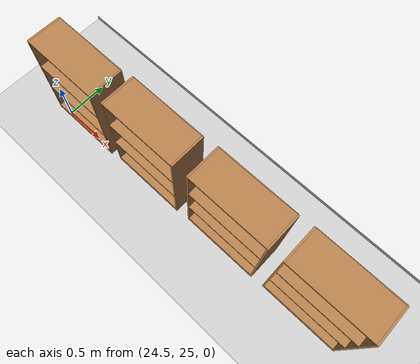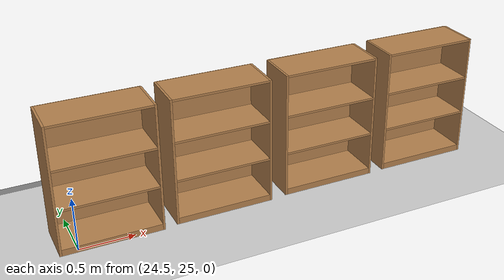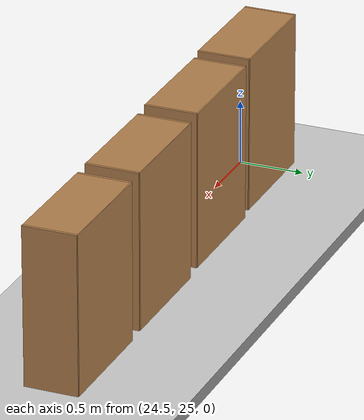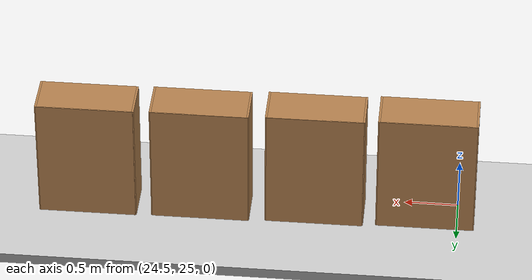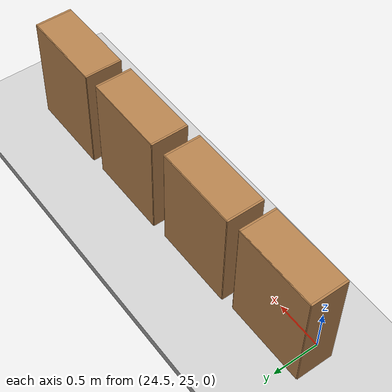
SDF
<sdf version="1.6">
 <world name="default">
  <model name="ground_plane">
   <static>1</static>
   <link name="link">
    <collision name="collision">
     <geometry><plane><normal>0 0 1</normal><size>100 100</size></plane></geometry>
     <surface><friction><ode><mu>100</mu><mu2>50</mu2></ode></friction></surface>
    </collision>
    <visual name="visual">
     <cast_shadows>0</cast_shadows>
     <geometry><plane><normal>0 0 1</normal><size>100 100</size></plane></geometry>
     <material>
      <script><uri>file://media/materials/scripts/gazebo.material</uri><name>Gazebo/Grey</name></script>
     </material>
    </visual>
   </link>
  </model>
  <model name="bookshelf_0">
   <static>1</static>
   <link name="link">
    <inertial><mass>1</mass></inertial>
    <collision name="back">
     <pose>0 0.005 0.6 0 -0 0</pose>
     <geometry><box><size>0.9 0.01 1.2</size></box></geometry>
    </collision>
    <visual name="visual1">
     <pose>0 0.005 0.6 0 -0 0</pose>
     <geometry><box><size>0.9 0.01 1.2</size></box></geometry>
     <material>
      <script><uri>file://media/materials/scripts/gazebo.material</uri><name>Gazebo/Wood</name></script>
     </material>
    </visual>
    <collision name="left_side">
     <pose>0.45 -0.195 0.6 0 -0 0</pose>
     <geometry><box><size>0.02 0.4 1.2</size></box></geometry>
    </collision>
    <visual name="visual2">
     <pose>0.45 -0.195 0.6 0 -0 0</pose>
     <geometry><box><size>0.02 0.4 1.2</size></box></geometry>
     <material>
      <script><uri>file://media/materials/scripts/gazebo.material</uri><name>Gazebo/Wood</name></script>
     </material>
    </visual>
    <collision name="right_side">
     <pose>-0.45 -0.195 0.6 0 -0 0</pose>
     <geometry><box><size>0.02 0.4 1.2</size></box></geometry>
    </collision>
    <visual name="visual3">
     <pose>-0.45 -0.195 0.6 0 -0 0</pose>
     <geometry><box><size>0.02 0.4 1.2</size></box></geometry>
     <material>
      <script><uri>file://media/materials/scripts/gazebo.material</uri><name>Gazebo/Wood</name></script>
     </material>
    </visual>
    <collision name="bottom">
     <pose>0 -0.195 0.03 0 -0 0</pose>
     <geometry><box><size>0.88 0.4 0.06</size></box></geometry>
    </collision>
    <visual name="visual4">
     <pose>0 -0.195 0.03 0 -0 0</pose>
     <geometry><box><size>0.88 0.4 0.06</size></box></geometry>
     <material>
      <script><uri>file://media/materials/scripts/gazebo.material</uri><name>Gazebo/Wood</name></script>
     </material>
    </visual>
    <collision name="top">
     <pose>0 -0.195 1.19 0 -0 0</pose>
     <geometry><box><size>0.88 0.4 0.02</size></box></geometry>
    </collision>
    <visual name="visual5">
     <pose>0 -0.195 1.19 0 -0 0</pose>
     <geometry><box><size>0.88 0.4 0.02</size></box></geometry>
     <material>
      <script><uri>file://media/materials/scripts/gazebo.material</uri><name>Gazebo/Wood</name></script>
     </material>
    </visual>
    <collision name="low_shelf">
     <pose>0 -0.195 0.43 0 -0 0</pose>
     <geometry><box><size>0.88 0.4 0.02</size></box></geometry>
    </collision>
    <visual name="visual6">
     <pose>0 -0.195 0.43 0 -0 0</pose>
     <geometry><box><size>0.88 0.4 0.02</size></box></geometry>
     <material>
      <script><uri>file://media/materials/scripts/gazebo.material</uri><name>Gazebo/Wood</name></script>
     </material>
    </visual>
    <collision name="high_shelf">
     <pose>0 -0.195 0.8 0 -0 0</pose>
     <geometry><box><size>0.88 0.4 0.02</size></box></geometry>
    </collision>
    <visual name="visual7">
     <pose>0 -0.195 0.8 0 -0 0</pose>
     <geometry><box><size>0.88 0.4 0.02</size></box></geometry>
     <material>
      <script><uri>file://media/materials/scripts/gazebo.material</uri><name>Gazebo/Wood</name></script>
     </material>
    </visual>
   </link>
   <pose>27.9644 25.4204 0 0 -0 0</pose>
  </model>
  <model name="bookshelf_1">
   <static>1</static>
   <link name="link">
    <inertial><mass>1</mass></inertial>
    <collision name="back">
     <pose>0 0.005 0.6 0 -0 0</pose>
     <geometry><box><size>0.9 0.01 1.2</size></box></geometry>
    </collision>
    <visual name="visual1">
     <pose>0 0.005 0.6 0 -0 0</pose>
     <geometry><box><size>0.9 0.01 1.2</size></box></geometry>
     <material>
      <script><uri>file://media/materials/scripts/gazebo.material</uri><name>Gazebo/Wood</name></script>
     </material>
    </visual>
    <collision name="left_side">
     <pose>0.45 -0.195 0.6 0 -0 0</pose>
     <geometry><box><size>0.02 0.4 1.2</size></box></geometry>
    </collision>
    <visual name="visual2">
     <pose>0.45 -0.195 0.6 0 -0 0</pose>
     <geometry><box><size>0.02 0.4 1.2</size></box></geometry>
     <material>
      <script><uri>file://media/materials/scripts/gazebo.material</uri><name>Gazebo/Wood</name></script>
     </material>
    </visual>
    <collision name="right_side">
     <pose>-0.45 -0.195 0.6 0 -0 0</pose>
     <geometry><box><size>0.02 0.4 1.2</size></box></geometry>
    </collision>
    <visual name="visual3">
     <pose>-0.45 -0.195 0.6 0 -0 0</pose>
     <geometry><box><size>0.02 0.4 1.2</size></box></geometry>
     <material>
      <script><uri>file://media/materials/scripts/gazebo.material</uri><name>Gazebo/Wood</name></script>
     </material>
    </visual>
    <collision name="bottom">
     <pose>0 -0.195 0.03 0 -0 0</pose>
     <geometry><box><size>0.88 0.4 0.06</size></box></geometry>
    </collision>
    <visual name="visual4">
     <pose>0 -0.195 0.03 0 -0 0</pose>
     <geometry><box><size>0.88 0.4 0.06</size></box></geometry>
     <material>
      <script><uri>file://media/materials/scripts/gazebo.material</uri><name>Gazebo/Wood</name></script>
     </material>
    </visual>
    <collision name="top">
     <pose>0 -0.195 1.19 0 -0 0</pose>
     <geometry><box><size>0.88 0.4 0.02</size></box></geometry>
    </collision>
    <visual name="visual5">
     <pose>0 -0.195 1.19 0 -0 0</pose>
     <geometry><box><size>0.88 0.4 0.02</size></box></geometry>
     <material>
      <script><uri>file://media/materials/scripts/gazebo.material</uri><name>Gazebo/Wood</name></script>
     </material>
    </visual>
    <collision name="low_shelf">
     <pose>0 -0.195 0.43 0 -0 0</pose>
     <geometry><box><size>0.88 0.4 0.02</size></box></geometry>
    </collision>
    <visual name="visual6">
     <pose>0 -0.195 0.43 0 -0 0</pose>
     <geometry><box><size>0.88 0.4 0.02</size></box></geometry>
     <material>
      <script><uri>file://media/materials/scripts/gazebo.material</uri><name>Gazebo/Wood</name></script>
     </material>
    </visual>
    <collision name="high_shelf">
     <pose>0 -0.195 0.8 0 -0 0</pose>
     <geometry><box><size>0.88 0.4 0.02</size></box></geometry>
    </collision>
    <visual name="visual7">
     <pose>0 -0.195 0.8 0 -0 0</pose>
     <geometry><box><size>0.88 0.4 0.02</size></box></geometry>
     <material>
      <script><uri>file://media/materials/scripts/gazebo.material</uri><name>Gazebo/Wood</name></script>
     </material>
    </visual>
   </link>
   <pose>26.9051 25.4091 0 0 -0 0</pose>
  </model>
  <model name="bookshelf_2">
   <static>1</static>
   <link name="link">
    <inertial><mass>1</mass></inertial>
    <collision name="back">
     <pose>0 0.005 0.6 0 -0 0</pose>
     <geometry><box><size>0.9 0.01 1.2</size></box></geometry>
    </collision>
    <visual name="visual1">
     <pose>0 0.005 0.6 0 -0 0</pose>
     <geometry><box><size>0.9 0.01 1.2</size></box></geometry>
     <material>
      <script><uri>file://media/materials/scripts/gazebo.material</uri><name>Gazebo/Wood</name></script>
     </material>
    </visual>
    <collision name="left_side">
     <pose>0.45 -0.195 0.6 0 -0 0</pose>
     <geometry><box><size>0.02 0.4 1.2</size></box></geometry>
    </collision>
    <visual name="visual2">
     <pose>0.45 -0.195 0.6 0 -0 0</pose>
     <geometry><box><size>0.02 0.4 1.2</size></box></geometry>
     <material>
      <script><uri>file://media/materials/scripts/gazebo.material</uri><name>Gazebo/Wood</name></script>
     </material>
    </visual>
    <collision name="right_side">
     <pose>-0.45 -0.195 0.6 0 -0 0</pose>
     <geometry><box><size>0.02 0.4 1.2</size></box></geometry>
    </collision>
    <visual name="visual3">
     <pose>-0.45 -0.195 0.6 0 -0 0</pose>
     <geometry><box><size>0.02 0.4 1.2</size></box></geometry>
     <material>
      <script><uri>file://media/materials/scripts/gazebo.material</uri><name>Gazebo/Wood</name></script>
     </material>
    </visual>
    <collision name="bottom">
     <pose>0 -0.195 0.03 0 -0 0</pose>
     <geometry><box><size>0.88 0.4 0.06</size></box></geometry>
    </collision>
    <visual name="visual4">
     <pose>0 -0.195 0.03 0 -0 0</pose>
     <geometry><box><size>0.88 0.4 0.06</size></box></geometry>
     <material>
      <script><uri>file://media/materials/scripts/gazebo.material</uri><name>Gazebo/Wood</name></script>
     </material>
    </visual>
    <collision name="top">
     <pose>0 -0.195 1.19 0 -0 0</pose>
     <geometry><box><size>0.88 0.4 0.02</size></box></geometry>
    </collision>
    <visual name="visual5">
     <pose>0 -0.195 1.19 0 -0 0</pose>
     <geometry><box><size>0.88 0.4 0.02</size></box></geometry>
     <material>
      <script><uri>file://media/materials/scripts/gazebo.material</uri><name>Gazebo/Wood</name></script>
     </material>
    </visual>
    <collision name="low_shelf">
     <pose>0 -0.195 0.43 0 -0 0</pose>
     <geometry><box><size>0.88 0.4 0.02</size></box></geometry>
    </collision>
    <visual name="visual6">
     <pose>0 -0.195 0.43 0 -0 0</pose>
     <geometry><box><size>0.88 0.4 0.02</size></box></geometry>
     <material>
      <script><uri>file://media/materials/scripts/gazebo.material</uri><name>Gazebo/Wood</name></script>
     </material>
    </visual>
    <collision name="high_shelf">
     <pose>0 -0.195 0.8 0 -0 0</pose>
     <geometry><box><size>0.88 0.4 0.02</size></box></geometry>
    </collision>
    <visual name="visual7">
     <pose>0 -0.195 0.8 0 -0 0</pose>
     <geometry><box><size>0.88 0.4 0.02</size></box></geometry>
     <material>
      <script><uri>file://media/materials/scripts/gazebo.material</uri><name>Gazebo/Wood</name></script>
     </material>
    </visual>
   </link>
   <pose>25.8361 25.3898 0 0 -0 0</pose>
  </model>
  <model name="bookshelf_3">
   <static>1</static>
   <link name="link">
    <inertial><mass>1</mass></inertial>
    <collision name="back">
     <pose>0 0.005 0.6 0 -0 0</pose>
     <geometry><box><size>0.9 0.01 1.2</size></box></geometry>
    </collision>
    <visual name="visual1">
     <pose>0 0.005 0.6 0 -0 0</pose>
     <geometry><box><size>0.9 0.01 1.2</size></box></geometry>
     <material>
      <script><uri>file://media/materials/scripts/gazebo.material</uri><name>Gazebo/Wood</name></script>
     </material>
    </visual>
    <collision name="left_side">
     <pose>0.45 -0.195 0.6 0 -0 0</pose>
     <geometry><box><size>0.02 0.4 1.2</size></box></geometry>
    </collision>
    <visual name="visual2">
     <pose>0.45 -0.195 0.6 0 -0 0</pose>
     <geometry><box><size>0.02 0.4 1.2</size></box></geometry>
     <material>
      <script><uri>file://media/materials/scripts/gazebo.material</uri><name>Gazebo/Wood</name></script>
     </material>
    </visual>
    <collision name="right_side">
     <pose>-0.45 -0.195 0.6 0 -0 0</pose>
     <geometry><box><size>0.02 0.4 1.2</size></box></geometry>
    </collision>
    <visual name="visual3">
     <pose>-0.45 -0.195 0.6 0 -0 0</pose>
     <geometry><box><size>0.02 0.4 1.2</size></box></geometry>
     <material>
      <script><uri>file://media/materials/scripts/gazebo.material</uri><name>Gazebo/Wood</name></script>
     </material>
    </visual>
    <collision name="bottom">
     <pose>0 -0.195 0.03 0 -0 0</pose>
     <geometry><box><size>0.88 0.4 0.06</size></box></geometry>
    </collision>
    <visual name="visual4">
     <pose>0 -0.195 0.03 0 -0 0</pose>
     <geometry><box><size>0.88 0.4 0.06</size></box></geometry>
     <material>
      <script><uri>file://media/materials/scripts/gazebo.material</uri><name>Gazebo/Wood</name></script>
     </material>
    </visual>
    <collision name="top">
     <pose>0 -0.195 1.19 0 -0 0</pose>
     <geometry><box><size>0.88 0.4 0.02</size></box></geometry>
    </collision>
    <visual name="visual5">
     <pose>0 -0.195 1.19 0 -0 0</pose>
     <geometry><box><size>0.88 0.4 0.02</size></box></geometry>
     <material>
      <script><uri>file://media/materials/scripts/gazebo.material</uri><name>Gazebo/Wood</name></script>
     </material>
    </visual>
    <collision name="low_shelf">
     <pose>0 -0.195 0.43 0 -0 0</pose>
     <geometry><box><size>0.88 0.4 0.02</size></box></geometry>
    </collision>
    <visual name="visual6">
     <pose>0 -0.195 0.43 0 -0 0</pose>
     <geometry><box><size>0.88 0.4 0.02</size></box></geometry>
     <material>
      <script><uri>file://media/materials/scripts/gazebo.material</uri><name>Gazebo/Wood</name></script>
     </material>
    </visual>
    <collision name="high_shelf">
     <pose>0 -0.195 0.8 0 -0 0</pose>
     <geometry><box><size>0.88 0.4 0.02</size></box></geometry>
    </collision>
    <visual name="visual7">
     <pose>0 -0.195 0.8 0 -0 0</pose>
     <geometry><box><size>0.88 0.4 0.02</size></box></geometry>
     <material>
      <script><uri>file://media/materials/scripts/gazebo.material</uri><name>Gazebo/Wood</name></script>
     </material>
    </visual>
   </link>
   <pose>24.7995 25.3639 0 0 -0 0</pose>
  </model>
  <model name="ground_plane_1">
   <static>1</static>
   <link name="link">
    <collision name="collision">
     <geometry><plane><normal>0 0 1</normal><size>100 100</size></plane></geometry>
     <surface><friction><ode><mu>100</mu><mu2>50</mu2></ode></friction></surface>
    </collision>
    <visual name="visual">
     <cast_shadows>0</cast_shadows>
     <geometry><plane><normal>0 0 1</normal><size>100 100</size></plane></geometry>
     <material>
      <script><uri>file://media/materials/scripts/gazebo.material</uri><name>Gazebo/Grey</name></script>
     </material>
    </visual>
   </link>
   <pose>-2.85693 99.8913 0 0 -0 0</pose>
  </model>
 </world>
</sdf>
